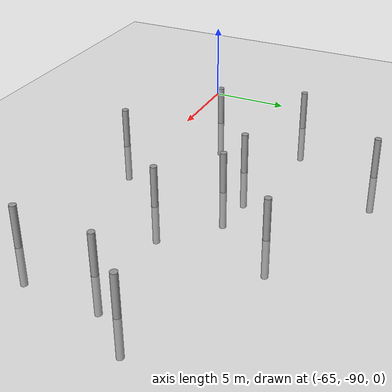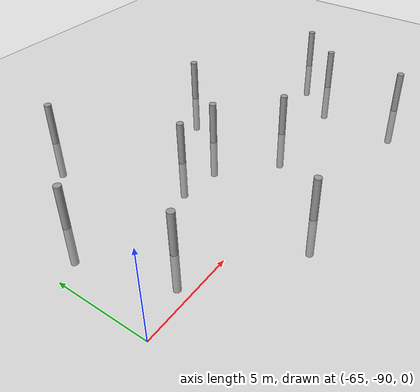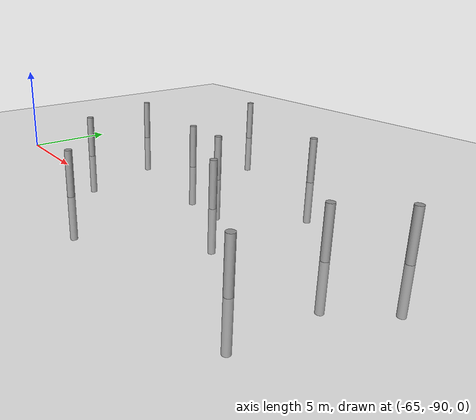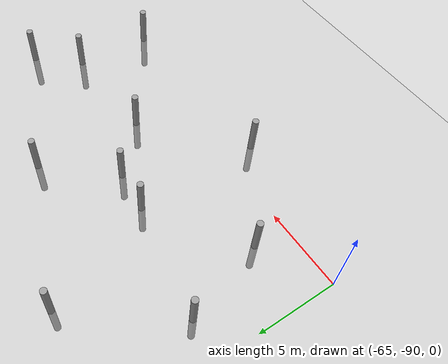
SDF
<sdf version="1.6">
 <world name="default">
  <model name="ground_plane">
   <static>1</static>
   <link name="link">
    <collision name="collision">
     <geometry><plane><normal>0 0 1</normal><size>100 100</size></plane></geometry>
     <surface><friction><ode><mu>100</mu><mu2>50</mu2></ode></friction></surface>
    </collision>
    <visual name="visual">
     <cast_shadows>0</cast_shadows>
     <geometry><plane><normal>0 0 1</normal><size>100 100</size></plane></geometry>
     <material>
      <script><uri>file://media/materials/scripts/gazebo.material</uri><name>Gazebo/Grey</name></script>
     </material>
    </visual>
   </link>
  </model>
  <model name="empty_pillars_11">
   <model name="empty_pillar_clone_10">
    <link name="link">
     <inertial>
      <mass>1</mass>
      <inertia><ixx>0.145833</ixx><ixy>0</ixy><ixz>0</ixz><iyy>0.145833</iyy><iyz>0</iyz><izz>0.125</izz></inertia>
     </inertial>
     <visual name="visual">
      <geometry><cylinder><radius>0.2</radius><length>5</length></cylinder></geometry>
      <material>
       <script><name>Gazebo/Grey</name><uri>file://media/materials/scripts/gazebo.material</uri></script>
       <shader type="vertex"><normal_map>__default__</normal_map></shader>
       <ambient>0.3 0.3 0.3 1</ambient>
       <diffuse>0.7 0.7 0.7 1</diffuse>
       <specular>0.01 0.01 0.01 1</specular>
       <emissive>0 0 0 1</emissive>
      </material>
     </visual>
     <collision name="collision">
      <geometry><cylinder><radius>0.05</radius><length>5</length></cylinder></geometry>
      <surface>
       <friction>
        <ode><mu>1</mu><mu2>1</mu2><fdir1>0 0 0</fdir1><slip1>0</slip1><slip2>0</slip2></ode>
        <torsional>
         <coefficient>1</coefficient>
         <patch_radius>0</patch_radius>
         <surface_radius>0</surface_radius>
         <use_patch_radius>1</use_patch_radius>
         <ode><slip>0</slip></ode>
        </torsional>
       </friction>
       <bounce><restitution_coefficient>0</restitution_coefficient><threshold>1e+06</threshold></bounce>
       <contact>
        <collide_without_contact>0</collide_without_contact>
        <collide_without_contact_bitmask>1</collide_without_contact_bitmask>
        <collide_bitmask>1</collide_bitmask>
        <ode>
         <soft_cfm>0</soft_cfm>
         <soft_erp>0.2</soft_erp>
         <kp>1e+13</kp>
         <kd>1</kd>
         <max_vel>0.01</max_vel>
         <min_depth>0</min_depth>
        </ode>
        <bullet>
         <split_impulse>1</split_impulse>
         <split_impulse_penetration_threshold>-0.01</split_impulse_penetration_threshold>
         <soft_cfm>0</soft_cfm>
         <soft_erp>0.2</soft_erp>
         <kp>1e+13</kp>
         <kd>1</kd>
        </bullet>
       </contact>
      </surface>
     </collision>
    </link>
    <static>0</static>
    <pose>13.5083 -16.8403 0 0 -0 0</pose>
   </model>
   <model name="empty_pillar_clone_33">
    <link name="link">
     <inertial>
      <mass>1</mass>
      <inertia><ixx>0.145833</ixx><ixy>0</ixy><ixz>0</ixz><iyy>0.145833</iyy><iyz>0</iyz><izz>0.125</izz></inertia>
     </inertial>
     <visual name="visual">
      <geometry><cylinder><radius>0.2</radius><length>5</length></cylinder></geometry>
      <material>
       <script><name>Gazebo/Grey</name><uri>file://media/materials/scripts/gazebo.material</uri></script>
       <shader type="vertex"><normal_map>__default__</normal_map></shader>
       <ambient>0.3 0.3 0.3 1</ambient>
       <diffuse>0.7 0.7 0.7 1</diffuse>
       <specular>0.01 0.01 0.01 1</specular>
       <emissive>0 0 0 1</emissive>
      </material>
     </visual>
     <collision name="collision">
      <geometry><cylinder><radius>0.05</radius><length>5</length></cylinder></geometry>
      <surface>
       <friction>
        <ode><mu>1</mu><mu2>1</mu2><fdir1>0 0 0</fdir1><slip1>0</slip1><slip2>0</slip2></ode>
        <torsional>
         <coefficient>1</coefficient>
         <patch_radius>0</patch_radius>
         <surface_radius>0</surface_radius>
         <use_patch_radius>1</use_patch_radius>
         <ode><slip>0</slip></ode>
        </torsional>
       </friction>
       <bounce><restitution_coefficient>0</restitution_coefficient><threshold>1e+06</threshold></bounce>
       <contact>
        <collide_without_contact>0</collide_without_contact>
        <collide_without_contact_bitmask>1</collide_without_contact_bitmask>
        <collide_bitmask>1</collide_bitmask>
        <ode>
         <soft_cfm>0</soft_cfm>
         <soft_erp>0.2</soft_erp>
         <kp>1e+13</kp>
         <kd>1</kd>
         <max_vel>0.01</max_vel>
         <min_depth>0</min_depth>
        </ode>
        <bullet>
         <split_impulse>1</split_impulse>
         <split_impulse_penetration_threshold>-0.01</split_impulse_penetration_threshold>
         <soft_cfm>0</soft_cfm>
         <soft_erp>0.2</soft_erp>
         <kp>1e+13</kp>
         <kd>1</kd>
        </bullet>
       </contact>
      </surface>
     </collision>
    </link>
    <static>0</static>
    <pose>21.5621 -13.0704 0 0 -0 0</pose>
   </model>
   <model name="empty_pillar_clone_34">
    <link name="link">
     <inertial>
      <mass>1</mass>
      <inertia><ixx>0.145833</ixx><ixy>0</ixy><ixz>0</ixz><iyy>0.145833</iyy><iyz>0</iyz><izz>0.125</izz></inertia>
     </inertial>
     <visual name="visual">
      <geometry><cylinder><radius>0.2</radius><length>5</length></cylinder></geometry>
      <material>
       <script><name>Gazebo/Grey</name><uri>file://media/materials/scripts/gazebo.material</uri></script>
       <shader type="vertex"><normal_map>__default__</normal_map></shader>
       <ambient>0.3 0.3 0.3 1</ambient>
       <diffuse>0.7 0.7 0.7 1</diffuse>
       <specular>0.01 0.01 0.01 1</specular>
       <emissive>0 0 0 1</emissive>
      </material>
     </visual>
     <collision name="collision">
      <geometry><cylinder><radius>0.05</radius><length>5</length></cylinder></geometry>
      <surface>
       <friction>
        <ode><mu>1</mu><mu2>1</mu2><fdir1>0 0 0</fdir1><slip1>0</slip1><slip2>0</slip2></ode>
        <torsional>
         <coefficient>1</coefficient>
         <patch_radius>0</patch_radius>
         <surface_radius>0</surface_radius>
         <use_patch_radius>1</use_patch_radius>
         <ode><slip>0</slip></ode>
        </torsional>
       </friction>
       <bounce><restitution_coefficient>0</restitution_coefficient><threshold>1e+06</threshold></bounce>
       <contact>
        <collide_without_contact>0</collide_without_contact>
        <collide_without_contact_bitmask>1</collide_without_contact_bitmask>
        <collide_bitmask>1</collide_bitmask>
        <ode>
         <soft_cfm>0</soft_cfm>
         <soft_erp>0.2</soft_erp>
         <kp>1e+13</kp>
         <kd>1</kd>
         <max_vel>0.01</max_vel>
         <min_depth>0</min_depth>
        </ode>
        <bullet>
         <split_impulse>1</split_impulse>
         <split_impulse_penetration_threshold>-0.01</split_impulse_penetration_threshold>
         <soft_cfm>0</soft_cfm>
         <soft_erp>0.2</soft_erp>
         <kp>1e+13</kp>
         <kd>1</kd>
        </bullet>
       </contact>
      </surface>
     </collision>
    </link>
    <static>0</static>
    <pose>19.0861 -20.8946 0 0 -0 0</pose>
   </model>
   <model name="empty_pillar_clone_48">
    <link name="link">
     <inertial>
      <mass>1</mass>
      <inertia><ixx>0.145833</ixx><ixy>0</ixy><ixz>0</ixz><iyy>0.145833</iyy><iyz>0</iyz><izz>0.125</izz></inertia>
     </inertial>
     <visual name="visual">
      <geometry><cylinder><radius>0.2</radius><length>5</length></cylinder></geometry>
      <material>
       <script><name>Gazebo/Grey</name><uri>file://media/materials/scripts/gazebo.material</uri></script>
       <shader type="vertex"><normal_map>__default__</normal_map></shader>
       <ambient>0.3 0.3 0.3 1</ambient>
       <diffuse>0.7 0.7 0.7 1</diffuse>
       <specular>0.01 0.01 0.01 1</specular>
       <emissive>0 0 0 1</emissive>
      </material>
     </visual>
     <collision name="collision">
      <geometry><cylinder><radius>0.05</radius><length>5</length></cylinder></geometry>
      <surface>
       <friction>
        <ode><mu>1</mu><mu2>1</mu2><fdir1>0 0 0</fdir1><slip1>0</slip1><slip2>0</slip2></ode>
        <torsional>
         <coefficient>1</coefficient>
         <patch_radius>0</patch_radius>
         <surface_radius>0</surface_radius>
         <use_patch_radius>1</use_patch_radius>
         <ode><slip>0</slip></ode>
        </torsional>
       </friction>
       <bounce><restitution_coefficient>0</restitution_coefficient><threshold>1e+06</threshold></bounce>
       <contact>
        <collide_without_contact>0</collide_without_contact>
        <collide_without_contact_bitmask>1</collide_without_contact_bitmask>
        <collide_bitmask>1</collide_bitmask>
        <ode>
         <soft_cfm>0</soft_cfm>
         <soft_erp>0.2</soft_erp>
         <kp>1e+13</kp>
         <kd>1</kd>
         <max_vel>0.01</max_vel>
         <min_depth>0</min_depth>
        </ode>
        <bullet>
         <split_impulse>1</split_impulse>
         <split_impulse_penetration_threshold>-0.01</split_impulse_penetration_threshold>
         <soft_cfm>0</soft_cfm>
         <soft_erp>0.2</soft_erp>
         <kp>1e+13</kp>
         <kd>1</kd>
        </bullet>
       </contact>
      </surface>
     </collision>
    </link>
    <static>0</static>
    <pose>16.2633 -5.65052 0 0 -0 0</pose>
   </model>
   <model name="empty_pillar_clone_51">
    <link name="link">
     <inertial>
      <mass>1</mass>
      <inertia><ixx>0.145833</ixx><ixy>0</ixy><ixz>0</ixz><iyy>0.145833</iyy><iyz>0</iyz><izz>0.125</izz></inertia>
     </inertial>
     <visual name="visual">
      <geometry><cylinder><radius>0.2</radius><length>5</length></cylinder></geometry>
      <material>
       <script><name>Gazebo/Grey</name><uri>file://media/materials/scripts/gazebo.material</uri></script>
       <shader type="vertex"><normal_map>__default__</normal_map></shader>
       <ambient>0.3 0.3 0.3 1</ambient>
       <diffuse>0.7 0.7 0.7 1</diffuse>
       <specular>0.01 0.01 0.01 1</specular>
       <emissive>0 0 0 1</emissive>
      </material>
     </visual>
     <collision name="collision">
      <geometry><cylinder><radius>0.05</radius><length>5</length></cylinder></geometry>
      <surface>
       <friction>
        <ode><mu>1</mu><mu2>1</mu2><fdir1>0 0 0</fdir1><slip1>0</slip1><slip2>0</slip2></ode>
        <torsional>
         <coefficient>1</coefficient>
         <patch_radius>0</patch_radius>
         <surface_radius>0</surface_radius>
         <use_patch_radius>1</use_patch_radius>
         <ode><slip>0</slip></ode>
        </torsional>
       </friction>
       <bounce><restitution_coefficient>0</restitution_coefficient><threshold>1e+06</threshold></bounce>
       <contact>
        <collide_without_contact>0</collide_without_contact>
        <collide_without_contact_bitmask>1</collide_without_contact_bitmask>
        <collide_bitmask>1</collide_bitmask>
        <ode>
         <soft_cfm>0</soft_cfm>
         <soft_erp>0.2</soft_erp>
         <kp>1e+13</kp>
         <kd>1</kd>
         <max_vel>0.01</max_vel>
         <min_depth>0</min_depth>
        </ode>
        <bullet>
         <split_impulse>1</split_impulse>
         <split_impulse_penetration_threshold>-0.01</split_impulse_penetration_threshold>
         <soft_cfm>0</soft_cfm>
         <soft_erp>0.2</soft_erp>
         <kp>1e+13</kp>
         <kd>1</kd>
        </bullet>
       </contact>
      </surface>
     </collision>
    </link>
    <static>0</static>
    <pose>11.8943 -11.5792 0 0 -0 0</pose>
   </model>
   <model name="empty_pillar_clone_54">
    <link name="link">
     <inertial>
      <mass>1</mass>
      <inertia><ixx>0.145833</ixx><ixy>0</ixy><ixz>0</ixz><iyy>0.145833</iyy><iyz>0</iyz><izz>0.125</izz></inertia>
     </inertial>
     <visual name="visual">
      <geometry><cylinder><radius>0.2</radius><length>5</length></cylinder></geometry>
      <material>
       <script><name>Gazebo/Grey</name><uri>file://media/materials/scripts/gazebo.material</uri></script>
       <shader type="vertex"><normal_map>__default__</normal_map></shader>
       <ambient>0.3 0.3 0.3 1</ambient>
       <diffuse>0.7 0.7 0.7 1</diffuse>
       <specular>0.01 0.01 0.01 1</specular>
       <emissive>0 0 0 1</emissive>
      </material>
     </visual>
     <collision name="collision">
      <geometry><cylinder><radius>0.05</radius><length>5</length></cylinder></geometry>
      <surface>
       <friction>
        <ode><mu>1</mu><mu2>1</mu2><fdir1>0 0 0</fdir1><slip1>0</slip1><slip2>0</slip2></ode>
        <torsional>
         <coefficient>1</coefficient>
         <patch_radius>0</patch_radius>
         <surface_radius>0</surface_radius>
         <use_patch_radius>1</use_patch_radius>
         <ode><slip>0</slip></ode>
        </torsional>
       </friction>
       <bounce><restitution_coefficient>0</restitution_coefficient><threshold>1e+06</threshold></bounce>
       <contact>
        <collide_without_contact>0</collide_without_contact>
        <collide_without_contact_bitmask>1</collide_without_contact_bitmask>
        <collide_bitmask>1</collide_bitmask>
        <ode>
         <soft_cfm>0</soft_cfm>
         <soft_erp>0.2</soft_erp>
         <kp>1e+13</kp>
         <kd>1</kd>
         <max_vel>0.01</max_vel>
         <min_depth>0</min_depth>
        </ode>
        <bullet>
         <split_impulse>1</split_impulse>
         <split_impulse_penetration_threshold>-0.01</split_impulse_penetration_threshold>
         <soft_cfm>0</soft_cfm>
         <soft_erp>0.2</soft_erp>
         <kp>1e+13</kp>
         <kd>1</kd>
        </bullet>
       </contact>
      </surface>
     </collision>
    </link>
    <static>0</static>
    <pose>24.557 -15.8784 0 0 -0 0</pose>
   </model>
   <model name="empty_pillar_clone_6">
    <link name="link">
     <inertial>
      <mass>1</mass>
      <inertia><ixx>0.145833</ixx><ixy>0</ixy><ixz>0</ixz><iyy>0.145833</iyy><iyz>0</iyz><izz>0.125</izz></inertia>
     </inertial>
     <visual name="visual">
      <geometry><cylinder><radius>0.2</radius><length>5</length></cylinder></geometry>
      <material>
       <script><name>Gazebo/Grey</name><uri>file://media/materials/scripts/gazebo.material</uri></script>
       <shader type="vertex"><normal_map>__default__</normal_map></shader>
       <ambient>0.3 0.3 0.3 1</ambient>
       <diffuse>0.7 0.7 0.7 1</diffuse>
       <specular>0.01 0.01 0.01 1</specular>
       <emissive>0 0 0 1</emissive>
      </material>
     </visual>
     <collision name="collision">
      <geometry><cylinder><radius>0.05</radius><length>5</length></cylinder></geometry>
      <surface>
       <friction>
        <ode><mu>1</mu><mu2>1</mu2><fdir1>0 0 0</fdir1><slip1>0</slip1><slip2>0</slip2></ode>
        <torsional>
         <coefficient>1</coefficient>
         <patch_radius>0</patch_radius>
         <surface_radius>0</surface_radius>
         <use_patch_radius>1</use_patch_radius>
         <ode><slip>0</slip></ode>
        </torsional>
       </friction>
       <bounce><restitution_coefficient>0</restitution_coefficient><threshold>1e+06</threshold></bounce>
       <contact>
        <collide_without_contact>0</collide_without_contact>
        <collide_without_contact_bitmask>1</collide_without_contact_bitmask>
        <collide_bitmask>1</collide_bitmask>
        <ode>
         <soft_cfm>0</soft_cfm>
         <soft_erp>0.2</soft_erp>
         <kp>1e+13</kp>
         <kd>1</kd>
         <max_vel>0.01</max_vel>
         <min_depth>0</min_depth>
        </ode>
        <bullet>
         <split_impulse>1</split_impulse>
         <split_impulse_penetration_threshold>-0.01</split_impulse_penetration_threshold>
         <soft_cfm>0</soft_cfm>
         <soft_erp>0.2</soft_erp>
         <kp>1e+13</kp>
         <kd>1</kd>
        </bullet>
       </contact>
      </surface>
     </collision>
    </link>
    <static>0</static>
    <pose>24.9156 -9.11394 0 0 -0 0</pose>
   </model>
   <model name="empty_pillar_clone_8">
    <link name="link">
     <inertial>
      <mass>1</mass>
      <inertia><ixx>0.145833</ixx><ixy>0</ixy><ixz>0</ixz><iyy>0.145833</iyy><iyz>0</iyz><izz>0.125</izz></inertia>
     </inertial>
     <visual name="visual">
      <geometry><cylinder><radius>0.2</radius><length>5</length></cylinder></geometry>
      <material>
       <script><name>Gazebo/Grey</name><uri>file://media/materials/scripts/gazebo.material</uri></script>
       <shader type="vertex"><normal_map>__default__</normal_map></shader>
       <ambient>0.3 0.3 0.3 1</ambient>
       <diffuse>0.7 0.7 0.7 1</diffuse>
       <specular>0.01 0.01 0.01 1</specular>
       <emissive>0 0 0 1</emissive>
      </material>
     </visual>
     <collision name="collision">
      <geometry><cylinder><radius>0.05</radius><length>5</length></cylinder></geometry>
      <surface>
       <friction>
        <ode><mu>1</mu><mu2>1</mu2><fdir1>0 0 0</fdir1><slip1>0</slip1><slip2>0</slip2></ode>
        <torsional>
         <coefficient>1</coefficient>
         <patch_radius>0</patch_radius>
         <surface_radius>0</surface_radius>
         <use_patch_radius>1</use_patch_radius>
         <ode><slip>0</slip></ode>
        </torsional>
       </friction>
       <bounce><restitution_coefficient>0</restitution_coefficient><threshold>1e+06</threshold></bounce>
       <contact>
        <collide_without_contact>0</collide_without_contact>
        <collide_without_contact_bitmask>1</collide_without_contact_bitmask>
        <collide_bitmask>1</collide_bitmask>
        <ode>
         <soft_cfm>0</soft_cfm>
         <soft_erp>0.2</soft_erp>
         <kp>1e+13</kp>
         <kd>1</kd>
         <max_vel>0.01</max_vel>
         <min_depth>0</min_depth>
        </ode>
        <bullet>
         <split_impulse>1</split_impulse>
         <split_impulse_penetration_threshold>-0.01</split_impulse_penetration_threshold>
         <soft_cfm>0</soft_cfm>
         <soft_erp>0.2</soft_erp>
         <kp>1e+13</kp>
         <kd>1</kd>
        </bullet>
       </contact>
      </surface>
     </collision>
    </link>
    <static>0</static>
    <pose>18.9854 -12.8403 0 0 -0 0</pose>
   </model>
   <static>0</static>
   <pose>-74.4153 -71.0606 0 0 -0 0</pose>
  </model>
  <model name="empty_pillars_12">
   <model name="empty_pillar_clone_35">
    <link name="link">
     <inertial>
      <mass>1</mass>
      <inertia><ixx>0.145833</ixx><ixy>0</ixy><ixz>0</ixz><iyy>0.145833</iyy><iyz>0</iyz><izz>0.125</izz></inertia>
     </inertial>
     <visual name="visual">
      <geometry><cylinder><radius>0.2</radius><length>5</length></cylinder></geometry>
      <material>
       <script><name>Gazebo/Grey</name><uri>file://media/materials/scripts/gazebo.material</uri></script>
       <shader type="vertex"><normal_map>__default__</normal_map></shader>
       <ambient>0.3 0.3 0.3 1</ambient>
       <diffuse>0.7 0.7 0.7 1</diffuse>
       <specular>0.01 0.01 0.01 1</specular>
       <emissive>0 0 0 1</emissive>
      </material>
     </visual>
     <collision name="collision">
      <geometry><cylinder><radius>0.05</radius><length>5</length></cylinder></geometry>
      <surface>
       <friction>
        <ode><mu>1</mu><mu2>1</mu2><fdir1>0 0 0</fdir1><slip1>0</slip1><slip2>0</slip2></ode>
        <torsional>
         <coefficient>1</coefficient>
         <patch_radius>0</patch_radius>
         <surface_radius>0</surface_radius>
         <use_patch_radius>1</use_patch_radius>
         <ode><slip>0</slip></ode>
        </torsional>
       </friction>
       <bounce><restitution_coefficient>0</restitution_coefficient><threshold>1e+06</threshold></bounce>
       <contact>
        <collide_without_contact>0</collide_without_contact>
        <collide_without_contact_bitmask>1</collide_without_contact_bitmask>
        <collide_bitmask>1</collide_bitmask>
        <ode>
         <soft_cfm>0</soft_cfm>
         <soft_erp>0.2</soft_erp>
         <kp>1e+13</kp>
         <kd>1</kd>
         <max_vel>0.01</max_vel>
         <min_depth>0</min_depth>
        </ode>
        <bullet>
         <split_impulse>1</split_impulse>
         <split_impulse_penetration_threshold>-0.01</split_impulse_penetration_threshold>
         <soft_cfm>0</soft_cfm>
         <soft_erp>0.2</soft_erp>
         <kp>1e+13</kp>
         <kd>1</kd>
        </bullet>
       </contact>
      </surface>
     </collision>
    </link>
    <static>0</static>
    <pose>-19.4431 -17.0281 0 0 -0 0</pose>
   </model>
   <model name="empty_pillar_clone_40">
    <link name="link">
     <inertial>
      <mass>1</mass>
      <inertia><ixx>0.145833</ixx><ixy>0</ixy><ixz>0</ixz><iyy>0.145833</iyy><iyz>0</iyz><izz>0.125</izz></inertia>
     </inertial>
     <visual name="visual">
      <geometry><cylinder><radius>0.2</radius><length>5</length></cylinder></geometry>
      <material>
       <script><name>Gazebo/Grey</name><uri>file://media/materials/scripts/gazebo.material</uri></script>
       <shader type="vertex"><normal_map>__default__</normal_map></shader>
       <ambient>0.3 0.3 0.3 1</ambient>
       <diffuse>0.7 0.7 0.7 1</diffuse>
       <specular>0.01 0.01 0.01 1</specular>
       <emissive>0 0 0 1</emissive>
      </material>
     </visual>
     <collision name="collision">
      <geometry><cylinder><radius>0.05</radius><length>5</length></cylinder></geometry>
      <surface>
       <friction>
        <ode><mu>1</mu><mu2>1</mu2><fdir1>0 0 0</fdir1><slip1>0</slip1><slip2>0</slip2></ode>
        <torsional>
         <coefficient>1</coefficient>
         <patch_radius>0</patch_radius>
         <surface_radius>0</surface_radius>
         <use_patch_radius>1</use_patch_radius>
         <ode><slip>0</slip></ode>
        </torsional>
       </friction>
       <bounce><restitution_coefficient>0</restitution_coefficient><threshold>1e+06</threshold></bounce>
       <contact>
        <collide_without_contact>0</collide_without_contact>
        <collide_without_contact_bitmask>1</collide_without_contact_bitmask>
        <collide_bitmask>1</collide_bitmask>
        <ode>
         <soft_cfm>0</soft_cfm>
         <soft_erp>0.2</soft_erp>
         <kp>1e+13</kp>
         <kd>1</kd>
         <max_vel>0.01</max_vel>
         <min_depth>0</min_depth>
        </ode>
        <bullet>
         <split_impulse>1</split_impulse>
         <split_impulse_penetration_threshold>-0.01</split_impulse_penetration_threshold>
         <soft_cfm>0</soft_cfm>
         <soft_erp>0.2</soft_erp>
         <kp>1e+13</kp>
         <kd>1</kd>
        </bullet>
       </contact>
      </surface>
     </collision>
    </link>
    <static>0</static>
    <pose>-17.318 -14.4851 0 0 -0 0</pose>
   </model>
   <model name="empty_pillar_clone_43">
    <link name="link">
     <inertial>
      <mass>1</mass>
      <inertia><ixx>0.145833</ixx><ixy>0</ixy><ixz>0</ixz><iyy>0.145833</iyy><iyz>0</iyz><izz>0.125</izz></inertia>
     </inertial>
     <visual name="visual">
      <geometry><cylinder><radius>0.2</radius><length>5</length></cylinder></geometry>
      <material>
       <script><name>Gazebo/Grey</name><uri>file://media/materials/scripts/gazebo.material</uri></script>
       <shader type="vertex"><normal_map>__default__</normal_map></shader>
       <ambient>0.3 0.3 0.3 1</ambient>
       <diffuse>0.7 0.7 0.7 1</diffuse>
       <specular>0.01 0.01 0.01 1</specular>
       <emissive>0 0 0 1</emissive>
      </material>
     </visual>
     <collision name="collision">
      <geometry><cylinder><radius>0.05</radius><length>5</length></cylinder></geometry>
      <surface>
       <friction>
        <ode><mu>1</mu><mu2>1</mu2><fdir1>0 0 0</fdir1><slip1>0</slip1><slip2>0</slip2></ode>
        <torsional>
         <coefficient>1</coefficient>
         <patch_radius>0</patch_radius>
         <surface_radius>0</surface_radius>
         <use_patch_radius>1</use_patch_radius>
         <ode><slip>0</slip></ode>
        </torsional>
       </friction>
       <bounce><restitution_coefficient>0</restitution_coefficient><threshold>1e+06</threshold></bounce>
       <contact>
        <collide_without_contact>0</collide_without_contact>
        <collide_without_contact_bitmask>1</collide_without_contact_bitmask>
        <collide_bitmask>1</collide_bitmask>
        <ode>
         <soft_cfm>0</soft_cfm>
         <soft_erp>0.2</soft_erp>
         <kp>1e+13</kp>
         <kd>1</kd>
         <max_vel>0.01</max_vel>
         <min_depth>0</min_depth>
        </ode>
        <bullet>
         <split_impulse>1</split_impulse>
         <split_impulse_penetration_threshold>-0.01</split_impulse_penetration_threshold>
         <soft_cfm>0</soft_cfm>
         <soft_erp>0.2</soft_erp>
         <kp>1e+13</kp>
         <kd>1</kd>
        </bullet>
       </contact>
      </surface>
     </collision>
    </link>
    <static>0</static>
    <pose>-19.7613 -21.8307 0 0 -0 0</pose>
   </model>
   <static>0</static>
   <pose>-23.7837 -69.5726 0 0 -0 0</pose>
  </model>
 </world>
</sdf>
